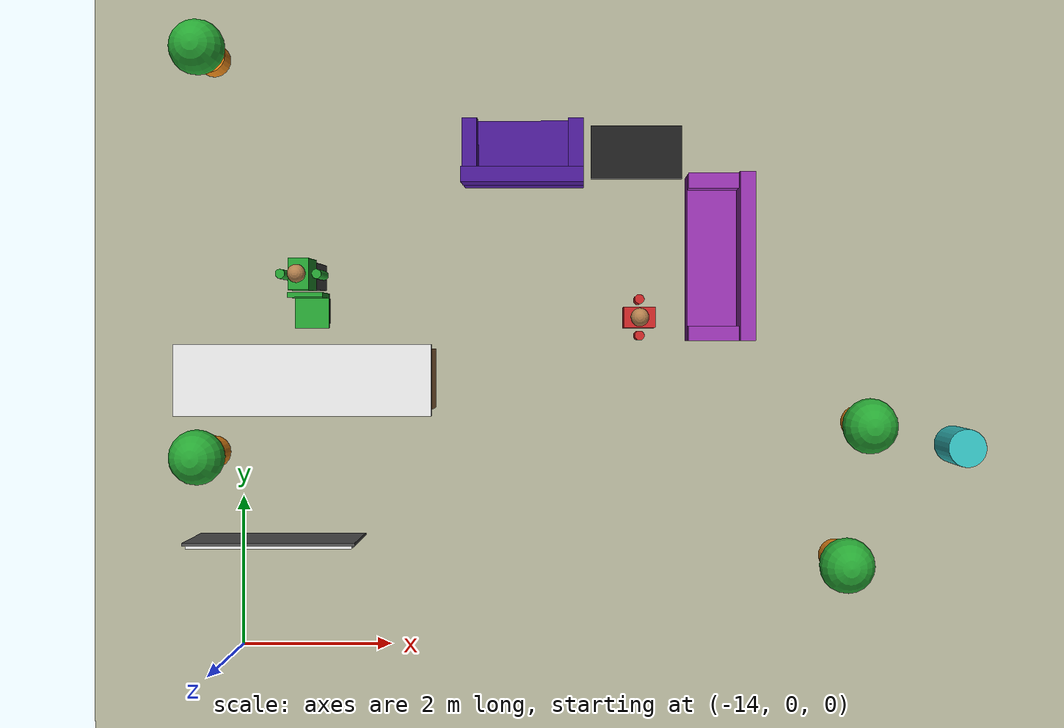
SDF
<sdf version="1.6">
 <world name="smart_building">
  <model name="ground_plane">
   <static>true</static>
   <link name="link">
    <collision name="collision">
     <geometry><plane><normal>0 0 1</normal><size>100 100</size></plane></geometry>
     <surface><friction><ode><mu>1.0</mu><mu2>1.0</mu2></ode></friction></surface>
    </collision>
    <visual name="visual">
     <geometry><plane><normal>0 0 1</normal><size>100 100</size></plane></geometry>
     <material>
      <script><uri>file://media/materials/scripts/gazebo.material</uri><name>Gazebo/Residential</name></script>
     </material>
    </visual>
   </link>
  </model>
  <model name="reception_desk">
   <static>true</static>
   <pose>-13.0000 3.6000 0.0000 0.0000 0.0000 0.0000</pose>
   <link name="link_0">
    <pose>0.0000 0.0000 0.5500 0.0000 0.0000 0.0000</pose>
    <collision name="link_0_collision">
     <geometry><box><size>3.2000 0.8000 1.1000</size></box></geometry>
    </collision>
    <visual name="link_0_visual">
     <geometry><box><size>3.2000 0.8000 1.1000</size></box></geometry>
     <material>
      <script><uri>file://media/materials/scripts/gazebo.material</uri><name>Gazebo/Wood</name></script>
     </material>
    </visual>
   </link>
   <link name="link_1">
    <pose>0.0000 0.0000 1.1300 0.0000 0.0000 0.0000</pose>
    <collision name="link_1_collision">
     <geometry><box><size>3.3000 0.9200 0.0600</size></box></geometry>
    </collision>
    <visual name="link_1_visual">
     <geometry><box><size>3.3000 0.9200 0.0600</size></box></geometry>
     <material>
      <script><uri>file://media/materials/scripts/gazebo.material</uri><name>Gazebo/White</name></script>
     </material>
    </visual>
   </link>
  </model>
  <model name="reception_chair">
   <static>true</static>
   <pose>-13.0000 4.5000 0.0000 0.0000 0.0000 3.1416</pose>
   <link name="link_0">
    <pose>0.0000 0.0000 0.4400 0.0000 0.0000 0.0000</pose>
    <collision name="link_0_collision">
     <geometry><box><size>0.4500 0.4500 0.0600</size></box></geometry>
    </collision>
    <visual name="link_0_visual">
     <geometry><box><size>0.4500 0.4500 0.0600</size></box></geometry>
     <material>
      <script><uri>file://media/materials/scripts/gazebo.material</uri><name>Gazebo/Green</name></script>
     </material>
    </visual>
   </link>
   <link name="link_1">
    <pose>0.0000 -0.2000 0.7200 0.0000 0.0000 0.0000</pose>
    <collision name="link_1_collision">
     <geometry><box><size>0.4500 0.0600 0.5000</size></box></geometry>
    </collision>
    <visual name="link_1_visual">
     <geometry><box><size>0.4500 0.0600 0.5000</size></box></geometry>
     <material>
      <script><uri>file://media/materials/scripts/gazebo.material</uri><name>Gazebo/Green</name></script>
     </material>
    </visual>
   </link>
   <link name="link_2">
    <pose>0.0000 0.0000 0.2100 0.0000 0.0000 0.0000</pose>
    <collision name="link_2_collision">
     <geometry><box><size>0.3400 0.3400 0.4200</size></box></geometry>
    </collision>
    <visual name="link_2_visual">
     <geometry><box><size>0.3400 0.3400 0.4200</size></box></geometry>
     <material>
      <script><uri>file://media/materials/scripts/gazebo.material</uri><name>Gazebo/DarkGrey</name></script>
     </material>
    </visual>
   </link>
  </model>
  <model name="person_receptionist">
   <static>true</static>
   <pose>-13.0000 4.9500 0.0000 0.0000 0.0000 -1.5708</pose>
   <link name="link_0">
    <pose>0.0000 0.0000 0.4250 0.0000 0.0000 0.0000</pose>
    <collision name="link_0_collision">
     <geometry><box><size>0.3400 0.2400 0.8500</size></box></geometry>
    </collision>
    <visual name="link_0_visual">
     <geometry><box><size>0.3400 0.2400 0.8500</size></box></geometry>
     <material>
      <script><uri>file://media/materials/scripts/gazebo.material</uri><name>Gazebo/DarkGrey</name></script>
     </material>
    </visual>
   </link>
   <link name="link_1">
    <pose>0.0000 0.0000 1.1500 0.0000 0.0000 0.0000</pose>
    <collision name="link_1_collision">
     <geometry><box><size>0.4000 0.2600 0.5500</size></box></geometry>
    </collision>
    <visual name="link_1_visual">
     <geometry><box><size>0.4000 0.2600 0.5500</size></box></geometry>
     <material>
      <script><uri>file://media/materials/scripts/gazebo.material</uri><name>Gazebo/Green</name></script>
     </material>
    </visual>
   </link>
   <link name="link_2">
    <pose>0.0000 0.2300 1.1500 0.0000 0.0000 0.0000</pose>
    <collision name="link_2_collision">
     <geometry><cylinder><radius>0.0600</radius><length>0.5500</length></cylinder></geometry>
    </collision>
    <visual name="link_2_visual">
     <geometry><cylinder><radius>0.0600</radius><length>0.5500</length></cylinder></geometry>
     <material>
      <script><uri>file://media/materials/scripts/gazebo.material</uri><name>Gazebo/Green</name></script>
     </material>
    </visual>
   </link>
   <link name="link_3">
    <pose>0.0000 -0.2300 1.1500 0.0000 0.0000 0.0000</pose>
    <collision name="link_3_collision">
     <geometry><cylinder><radius>0.0600</radius><length>0.5500</length></cylinder></geometry>
    </collision>
    <visual name="link_3_visual">
     <geometry><cylinder><radius>0.0600</radius><length>0.5500</length></cylinder></geometry>
     <material>
      <script><uri>file://media/materials/scripts/gazebo.material</uri><name>Gazebo/Green</name></script>
     </material>
    </visual>
   </link>
   <link name="link_4">
    <pose>0.0000 0.0000 1.5500 0.0000 0.0000 0.0000</pose>
    <collision name="link_4_collision"><geometry><sphere><radius>0.1150</radius></sphere></geometry></collision>
    <visual name="link_4_visual">
     <geometry><sphere><radius>0.1150</radius></sphere></geometry>
     <material>
      <script><uri>file://media/materials/scripts/gazebo.material</uri><name>Gazebo/Wood</name></script>
     </material>
    </visual>
   </link>
  </model>
  <model name="lounge_sofa_a">
   <static>true</static>
   <pose>-7.6000 5.2000 0.0000 0.0000 0.0000 1.5708</pose>
   <link name="link_0">
    <pose>0.0000 0.0000 0.2000 0.0000 0.0000 0.0000</pose>
    <collision name="link_0_collision">
     <geometry><box><size>2.2000 0.8500 0.4000</size></box></geometry>
    </collision>
    <visual name="link_0_visual">
     <geometry><box><size>2.2000 0.8500 0.4000</size></box></geometry>
     <material>
      <script><uri>file://media/materials/scripts/gazebo.material</uri><name>Gazebo/Purple</name></script>
     </material>
    </visual>
   </link>
   <link name="link_1">
    <pose>0.0000 -0.3300 0.6500 0.0000 0.0000 0.0000</pose>
    <collision name="link_1_collision">
     <geometry><box><size>2.2000 0.2000 0.5000</size></box></geometry>
    </collision>
    <visual name="link_1_visual">
     <geometry><box><size>2.2000 0.2000 0.5000</size></box></geometry>
     <material>
      <script><uri>file://media/materials/scripts/gazebo.material</uri><name>Gazebo/Purple</name></script>
     </material>
    </visual>
   </link>
   <link name="link_2">
    <pose>-1.0000 0.0000 0.5500 0.0000 0.0000 0.0000</pose>
    <collision name="link_2_collision">
     <geometry><box><size>0.2000 0.8500 0.3000</size></box></geometry>
    </collision>
    <visual name="link_2_visual">
     <geometry><box><size>0.2000 0.8500 0.3000</size></box></geometry>
     <material>
      <script><uri>file://media/materials/scripts/gazebo.material</uri><name>Gazebo/Purple</name></script>
     </material>
    </visual>
   </link>
   <link name="link_3">
    <pose>1.0000 0.0000 0.5500 0.0000 0.0000 0.0000</pose>
    <collision name="link_3_collision">
     <geometry><box><size>0.2000 0.8500 0.3000</size></box></geometry>
    </collision>
    <visual name="link_3_visual">
     <geometry><box><size>0.2000 0.8500 0.3000</size></box></geometry>
     <material>
      <script><uri>file://media/materials/scripts/gazebo.material</uri><name>Gazebo/Purple</name></script>
     </material>
    </visual>
   </link>
  </model>
  <model name="lounge_sofa_c">
   <static>true</static>
   <pose>-10.2000 6.6000 0.0000 0.0000 0.0000 0.0000</pose>
   <link name="link_0">
    <pose>0.0000 0.0000 0.2000 0.0000 0.0000 0.0000</pose>
    <collision name="link_0_collision">
     <geometry><box><size>1.6000 0.8500 0.4000</size></box></geometry>
    </collision>
    <visual name="link_0_visual">
     <geometry><box><size>1.6000 0.8500 0.4000</size></box></geometry>
     <material>
      <script><uri>file://media/materials/scripts/gazebo.material</uri><name>Gazebo/Indigo</name></script>
     </material>
    </visual>
   </link>
   <link name="link_1">
    <pose>0.0000 -0.3300 0.6500 0.0000 0.0000 0.0000</pose>
    <collision name="link_1_collision">
     <geometry><box><size>1.6000 0.2000 0.5000</size></box></geometry>
    </collision>
    <visual name="link_1_visual">
     <geometry><box><size>1.6000 0.2000 0.5000</size></box></geometry>
     <material>
      <script><uri>file://media/materials/scripts/gazebo.material</uri><name>Gazebo/Indigo</name></script>
     </material>
    </visual>
   </link>
   <link name="link_2">
    <pose>-0.7000 0.0000 0.5500 0.0000 0.0000 0.0000</pose>
    <collision name="link_2_collision">
     <geometry><box><size>0.2000 0.8500 0.3000</size></box></geometry>
    </collision>
    <visual name="link_2_visual">
     <geometry><box><size>0.2000 0.8500 0.3000</size></box></geometry>
     <material>
      <script><uri>file://media/materials/scripts/gazebo.material</uri><name>Gazebo/Indigo</name></script>
     </material>
    </visual>
   </link>
   <link name="link_3">
    <pose>0.7000 0.0000 0.5500 0.0000 0.0000 0.0000</pose>
    <collision name="link_3_collision">
     <geometry><box><size>0.2000 0.8500 0.3000</size></box></geometry>
    </collision>
    <visual name="link_3_visual">
     <geometry><box><size>0.2000 0.8500 0.3000</size></box></geometry>
     <material>
      <script><uri>file://media/materials/scripts/gazebo.material</uri><name>Gazebo/Indigo</name></script>
     </material>
    </visual>
   </link>
  </model>
  <model name="lounge_coffee_table">
   <static>true</static>
   <pose>-8.7000 6.6000 0.0000 0.0000 0.0000 0.0000</pose>
   <link name="link_0">
    <pose>0.0000 0.0000 0.4250 0.0000 0.0000 0.0000</pose>
    <collision name="link_0_collision">
     <geometry><box><size>1.2000 0.7000 0.0500</size></box></geometry>
    </collision>
    <visual name="link_0_visual">
     <geometry><box><size>1.2000 0.7000 0.0500</size></box></geometry>
     <material>
      <script><uri>file://media/materials/scripts/gazebo.material</uri><name>Gazebo/FlatBlack</name></script>
     </material>
    </visual>
   </link>
   <link name="link_1">
    <pose>-0.5200 -0.2700 0.2000 0.0000 0.0000 0.0000</pose>
    <collision name="link_1_collision">
     <geometry><box><size>0.0600 0.0600 0.4000</size></box></geometry>
    </collision>
    <visual name="link_1_visual">
     <geometry><box><size>0.0600 0.0600 0.4000</size></box></geometry>
     <material>
      <script><uri>file://media/materials/scripts/gazebo.material</uri><name>Gazebo/DarkGrey</name></script>
     </material>
    </visual>
   </link>
   <link name="link_2">
    <pose>-0.5200 0.2700 0.2000 0.0000 0.0000 0.0000</pose>
    <collision name="link_2_collision">
     <geometry><box><size>0.0600 0.0600 0.4000</size></box></geometry>
    </collision>
    <visual name="link_2_visual">
     <geometry><box><size>0.0600 0.0600 0.4000</size></box></geometry>
     <material>
      <script><uri>file://media/materials/scripts/gazebo.material</uri><name>Gazebo/DarkGrey</name></script>
     </material>
    </visual>
   </link>
   <link name="link_3">
    <pose>0.5200 -0.2700 0.2000 0.0000 0.0000 0.0000</pose>
    <collision name="link_3_collision">
     <geometry><box><size>0.0600 0.0600 0.4000</size></box></geometry>
    </collision>
    <visual name="link_3_visual">
     <geometry><box><size>0.0600 0.0600 0.4000</size></box></geometry>
     <material>
      <script><uri>file://media/materials/scripts/gazebo.material</uri><name>Gazebo/DarkGrey</name></script>
     </material>
    </visual>
   </link>
   <link name="link_4">
    <pose>0.5200 0.2700 0.2000 0.0000 0.0000 0.0000</pose>
    <collision name="link_4_collision">
     <geometry><box><size>0.0600 0.0600 0.4000</size></box></geometry>
    </collision>
    <visual name="link_4_visual">
     <geometry><box><size>0.0600 0.0600 0.4000</size></box></geometry>
     <material>
      <script><uri>file://media/materials/scripts/gazebo.material</uri><name>Gazebo/DarkGrey</name></script>
     </material>
    </visual>
   </link>
  </model>
  <model name="person_lounge_0">
   <static>true</static>
   <pose>-8.7000 4.4000 0.0000 0.0000 0.0000 0.0000</pose>
   <link name="link_0">
    <pose>0.0000 0.0000 0.4250 0.0000 0.0000 0.0000</pose>
    <collision name="link_0_collision">
     <geometry><box><size>0.3400 0.2400 0.8500</size></box></geometry>
    </collision>
    <visual name="link_0_visual">
     <geometry><box><size>0.3400 0.2400 0.8500</size></box></geometry>
     <material>
      <script><uri>file://media/materials/scripts/gazebo.material</uri><name>Gazebo/DarkGrey</name></script>
     </material>
    </visual>
   </link>
   <link name="link_1">
    <pose>0.0000 0.0000 1.1500 0.0000 0.0000 0.0000</pose>
    <collision name="link_1_collision">
     <geometry><box><size>0.4000 0.2600 0.5500</size></box></geometry>
    </collision>
    <visual name="link_1_visual">
     <geometry><box><size>0.4000 0.2600 0.5500</size></box></geometry>
     <material>
      <script><uri>file://media/materials/scripts/gazebo.material</uri><name>Gazebo/RedBright</name></script>
     </material>
    </visual>
   </link>
   <link name="link_2">
    <pose>0.0000 0.2300 1.1500 0.0000 0.0000 0.0000</pose>
    <collision name="link_2_collision">
     <geometry><cylinder><radius>0.0600</radius><length>0.5500</length></cylinder></geometry>
    </collision>
    <visual name="link_2_visual">
     <geometry><cylinder><radius>0.0600</radius><length>0.5500</length></cylinder></geometry>
     <material>
      <script><uri>file://media/materials/scripts/gazebo.material</uri><name>Gazebo/RedBright</name></script>
     </material>
    </visual>
   </link>
   <link name="link_3">
    <pose>0.0000 -0.2300 1.1500 0.0000 0.0000 0.0000</pose>
    <collision name="link_3_collision">
     <geometry><cylinder><radius>0.0600</radius><length>0.5500</length></cylinder></geometry>
    </collision>
    <visual name="link_3_visual">
     <geometry><cylinder><radius>0.0600</radius><length>0.5500</length></cylinder></geometry>
     <material>
      <script><uri>file://media/materials/scripts/gazebo.material</uri><name>Gazebo/RedBright</name></script>
     </material>
    </visual>
   </link>
   <link name="link_4">
    <pose>0.0000 0.0000 1.5500 0.0000 0.0000 0.0000</pose>
    <collision name="link_4_collision"><geometry><sphere><radius>0.1150</radius></sphere></geometry></collision>
    <visual name="link_4_visual">
     <geometry><sphere><radius>0.1150</radius></sphere></geometry>
     <material>
      <script><uri>file://media/materials/scripts/gazebo.material</uri><name>Gazebo/Wood</name></script>
     </material>
    </visual>
   </link>
  </model>
  <model name="plant_reception_0">
   <static>true</static>
   <pose>-14.4000 7.9000 0.0000 0.0000 0.0000 0.0000</pose>
   <link name="link_0">
    <pose>0.0000 0.0000 0.1800 0.0000 0.0000 0.0000</pose>
    <collision name="link_0_collision">
     <geometry><cylinder><radius>0.2200</radius><length>0.3600</length></cylinder></geometry>
    </collision>
    <visual name="link_0_visual">
     <geometry><cylinder><radius>0.2200</radius><length>0.3600</length></cylinder></geometry>
     <material>
      <script><uri>file://media/materials/scripts/gazebo.material</uri><name>Gazebo/Orange</name></script>
     </material>
    </visual>
   </link>
   <link name="link_1">
    <pose>0.0000 0.0000 0.5000 0.0000 0.0000 0.0000</pose>
    <collision name="link_1_collision">
     <geometry><cylinder><radius>0.0500</radius><length>0.4000</length></cylinder></geometry>
    </collision>
    <visual name="link_1_visual">
     <geometry><cylinder><radius>0.0500</radius><length>0.4000</length></cylinder></geometry>
     <material>
      <script><uri>file://media/materials/scripts/gazebo.material</uri><name>Gazebo/Wood</name></script>
     </material>
    </visual>
   </link>
   <link name="link_2">
    <pose>0.0000 0.0000 0.9500 0.0000 0.0000 0.0000</pose>
    <collision name="link_2_collision"><geometry><sphere><radius>0.3600</radius></sphere></geometry></collision>
    <visual name="link_2_visual">
     <geometry><sphere><radius>0.3600</radius></sphere></geometry>
     <material>
      <script><uri>file://media/materials/scripts/gazebo.material</uri><name>Gazebo/Green</name></script>
     </material>
    </visual>
   </link>
  </model>
  <model name="plant_reception_1">
   <static>true</static>
   <pose>-5.7000 3.0000 0.0000 0.0000 0.0000 0.0000</pose>
   <link name="link_0">
    <pose>0.0000 0.0000 0.1800 0.0000 0.0000 0.0000</pose>
    <collision name="link_0_collision">
     <geometry><cylinder><radius>0.2200</radius><length>0.3600</length></cylinder></geometry>
    </collision>
    <visual name="link_0_visual">
     <geometry><cylinder><radius>0.2200</radius><length>0.3600</length></cylinder></geometry>
     <material>
      <script><uri>file://media/materials/scripts/gazebo.material</uri><name>Gazebo/Orange</name></script>
     </material>
    </visual>
   </link>
   <link name="link_1">
    <pose>0.0000 0.0000 0.5000 0.0000 0.0000 0.0000</pose>
    <collision name="link_1_collision">
     <geometry><cylinder><radius>0.0500</radius><length>0.4000</length></cylinder></geometry>
    </collision>
    <visual name="link_1_visual">
     <geometry><cylinder><radius>0.0500</radius><length>0.4000</length></cylinder></geometry>
     <material>
      <script><uri>file://media/materials/scripts/gazebo.material</uri><name>Gazebo/Wood</name></script>
     </material>
    </visual>
   </link>
   <link name="link_2">
    <pose>0.0000 0.0000 0.9500 0.0000 0.0000 0.0000</pose>
    <collision name="link_2_collision"><geometry><sphere><radius>0.3600</radius></sphere></geometry></collision>
    <visual name="link_2_visual">
     <geometry><sphere><radius>0.3600</radius></sphere></geometry>
     <material>
      <script><uri>file://media/materials/scripts/gazebo.material</uri><name>Gazebo/Green</name></script>
     </material>
    </visual>
   </link>
  </model>
  <model name="plant_reception_3">
   <static>true</static>
   <pose>-14.4000 2.6000 0.0000 0.0000 0.0000 0.0000</pose>
   <link name="link_0">
    <pose>0.0000 0.0000 0.1800 0.0000 0.0000 0.0000</pose>
    <collision name="link_0_collision">
     <geometry><cylinder><radius>0.2200</radius><length>0.3600</length></cylinder></geometry>
    </collision>
    <visual name="link_0_visual">
     <geometry><cylinder><radius>0.2200</radius><length>0.3600</length></cylinder></geometry>
     <material>
      <script><uri>file://media/materials/scripts/gazebo.material</uri><name>Gazebo/Orange</name></script>
     </material>
    </visual>
   </link>
   <link name="link_1">
    <pose>0.0000 0.0000 0.5000 0.0000 0.0000 0.0000</pose>
    <collision name="link_1_collision">
     <geometry><cylinder><radius>0.0500</radius><length>0.4000</length></cylinder></geometry>
    </collision>
    <visual name="link_1_visual">
     <geometry><cylinder><radius>0.0500</radius><length>0.4000</length></cylinder></geometry>
     <material>
      <script><uri>file://media/materials/scripts/gazebo.material</uri><name>Gazebo/Wood</name></script>
     </material>
    </visual>
   </link>
   <link name="link_2">
    <pose>0.0000 0.0000 0.9500 0.0000 0.0000 0.0000</pose>
    <collision name="link_2_collision"><geometry><sphere><radius>0.3600</radius></sphere></geometry></collision>
    <visual name="link_2_visual">
     <geometry><sphere><radius>0.3600</radius></sphere></geometry>
     <material>
      <script><uri>file://media/materials/scripts/gazebo.material</uri><name>Gazebo/Green</name></script>
     </material>
    </visual>
   </link>
  </model>
  <model name="reception_sign">
   <static>true</static>
   <pose>-13.2000 1.6300 1.8000 0.0000 0.0000 0.0000</pose>
   <link name="link_0">
    <collision name="link_0_collision">
     <geometry><box><size>2.0000 0.0600 0.9000</size></box></geometry>
    </collision>
    <visual name="link_0_visual">
     <geometry><box><size>2.0000 0.0600 0.9000</size></box></geometry>
     <material>
      <script><uri>file://media/materials/scripts/gazebo.material</uri><name>Gazebo/White</name></script>
     </material>
    </visual>
   </link>
   <link name="link_1">
    <pose>0.0000 0.0300 0.0000 0.0000 0.0000 0.0000</pose>
    <visual name="link_1_visual">
     <geometry><box><size>2.0800 0.0300 0.9800</size></box></geometry>
     <material>
      <script><uri>file://media/materials/scripts/gazebo.material</uri><name>Gazebo/DarkGrey</name></script>
     </material>
    </visual>
   </link>
  </model>
  <model name="office_bin">
   <static>true</static>
   <pose>-4.4000 2.7000 0.0000 0.0000 0.0000 0.0000</pose>
   <link name="link_0">
    <pose>0.0000 0.0000 0.4000 0.0000 0.0000 0.0000</pose>
    <collision name="link_0_collision">
     <geometry><cylinder><radius>0.2500</radius><length>0.8000</length></cylinder></geometry>
    </collision>
    <visual name="link_0_visual">
     <geometry><cylinder><radius>0.2500</radius><length>0.8000</length></cylinder></geometry>
     <material>
      <script><uri>file://media/materials/scripts/gazebo.material</uri><name>Gazebo/Turquoise</name></script>
     </material>
    </visual>
   </link>
  </model>
  <model name="plant_corridor_0">
   <static>true</static>
   <pose>-6.0000 1.2000 0.0000 0.0000 0.0000 0.0000</pose>
   <link name="link_0">
    <pose>0.0000 0.0000 0.1800 0.0000 0.0000 0.0000</pose>
    <collision name="link_0_collision">
     <geometry><cylinder><radius>0.2200</radius><length>0.3600</length></cylinder></geometry>
    </collision>
    <visual name="link_0_visual">
     <geometry><cylinder><radius>0.2200</radius><length>0.3600</length></cylinder></geometry>
     <material>
      <script><uri>file://media/materials/scripts/gazebo.material</uri><name>Gazebo/Orange</name></script>
     </material>
    </visual>
   </link>
   <link name="link_1">
    <pose>0.0000 0.0000 0.5000 0.0000 0.0000 0.0000</pose>
    <collision name="link_1_collision">
     <geometry><cylinder><radius>0.0500</radius><length>0.4000</length></cylinder></geometry>
    </collision>
    <visual name="link_1_visual">
     <geometry><cylinder><radius>0.0500</radius><length>0.4000</length></cylinder></geometry>
     <material>
      <script><uri>file://media/materials/scripts/gazebo.material</uri><name>Gazebo/Wood</name></script>
     </material>
    </visual>
   </link>
   <link name="link_2">
    <pose>0.0000 0.0000 0.9500 0.0000 0.0000 0.0000</pose>
    <collision name="link_2_collision"><geometry><sphere><radius>0.3600</radius></sphere></geometry></collision>
    <visual name="link_2_visual">
     <geometry><sphere><radius>0.3600</radius></sphere></geometry>
     <material>
      <script><uri>file://media/materials/scripts/gazebo.material</uri><name>Gazebo/Green</name></script>
     </material>
    </visual>
   </link>
  </model>
 </world>
</sdf>
